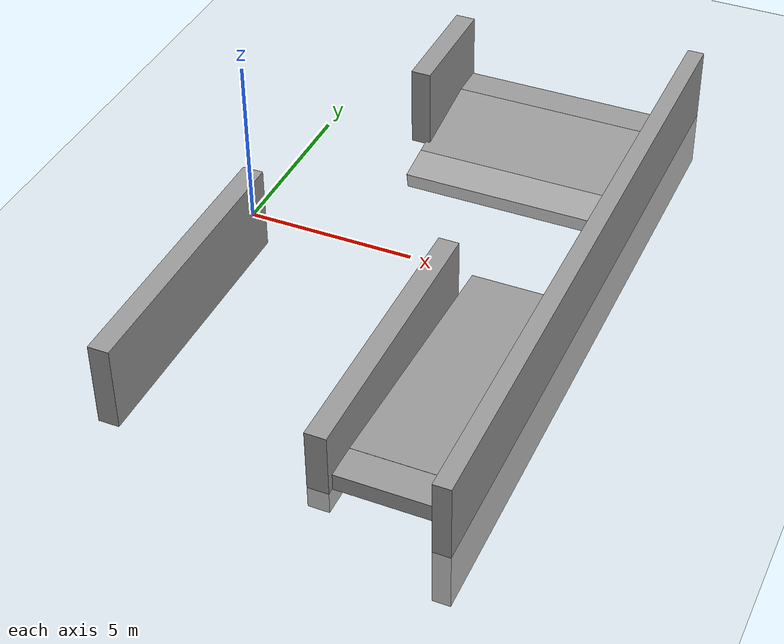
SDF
<sdf version="1.7">
 <world name="default">
  <model name="ground_plane">
   <static>1</static>
   <link name="link">
    <collision name="collision">
     <geometry><plane><normal>0 0 1</normal><size>100 100</size></plane></geometry>
     <surface>
      <contact><collide_bitmask>65535</collide_bitmask></contact>
      <friction><ode><mu>50</mu><mu2>50</mu2></ode></friction>
     </surface>
     <max_contacts>50</max_contacts>
    </collision>
    <visual name="visual">
     <cast_shadows>0</cast_shadows>
     <geometry><plane><normal>0 0 1</normal><size>100 100</size></plane></geometry>
     <material>
      <script><uri>file://media/materials/scripts/gazebo.material</uri><name>Gazebo/Grey</name></script>
     </material>
    </visual>
   </link>
  </model>
  <model name="unit_box_4_0">
   <static>1</static>
   <link name="link">
    <inertial>
     <mass>1</mass>
     <inertia>
      <ixx>0.166667</ixx>
      <ixy>0</ixy>
      <ixz>0</ixz>
      <iyy>0.166667</iyy>
      <iyz>0</iyz>
      <izz>0.166667</izz>
     </inertia>
    </inertial>
    <visual name="visual">
     <geometry><box><size>3 1 0.5</size></box></geometry>
     <material>
      <script><name>Gazebo/Grey</name><uri>file://media/materials/scripts/gazebo.material</uri></script>
      <shader type="pixel"><normal_map>__default__</normal_map></shader>
      <ambient>0.3 0.3 0.3 1</ambient>
      <diffuse>0.7 0.7 0.7 1</diffuse>
      <specular>0.01 0.01 0.01 1</specular>
      <emissive>0 0 0 1</emissive>
     </material>
    </visual>
    <collision name="collision">
     <max_contacts>50</max_contacts>
     <geometry><box><size>3 1 0.5</size></box></geometry>
     <surface>
      <friction>
       <ode><mu>50</mu><mu2>50</mu2><fdir1>0 0 0</fdir1><slip1>0</slip1><slip2>0</slip2></ode>
       <torsional>
        <coefficient>1</coefficient>
        <patch_radius>0</patch_radius>
        <surface_radius>0</surface_radius>
        <use_patch_radius>1</use_patch_radius>
        <ode><slip>0</slip></ode>
       </torsional>
      </friction>
      <bounce><restitution_coefficient>0</restitution_coefficient><threshold>1e+06</threshold></bounce>
      <contact>
       <collide_without_contact>0</collide_without_contact>
       <collide_without_contact_bitmask>1</collide_without_contact_bitmask>
       <collide_bitmask>1</collide_bitmask>
       <ode>
        <soft_cfm>0</soft_cfm>
        <soft_erp>0.2</soft_erp>
        <kp>1e+13</kp>
        <kd>1</kd>
        <max_vel>0.01</max_vel>
        <min_depth>0</min_depth>
       </ode>
       <bullet>
        <split_impulse>1</split_impulse>
        <split_impulse_penetration_threshold>-0.01</split_impulse_penetration_threshold>
        <soft_cfm>0</soft_cfm>
        <soft_erp>0.2</soft_erp>
        <kp>1e+13</kp>
        <kd>1</kd>
       </bullet>
      </contact>
     </surface>
    </collision>
   </link>
   <static>1</static>
   <pose>8.41088 -8.53541 0.25 -1e-05 0 0</pose>
  </model>
  <model name="unit_box_up1">
   <link name="link">
    <inertial>
     <mass>1</mass>
     <inertia>
      <ixx>0.166667</ixx>
      <ixy>0</ixy>
      <ixz>0</ixz>
      <iyy>0.166667</iyy>
      <iyz>0</iyz>
      <izz>0.166667</izz>
     </inertia>
    </inertial>
    <visual name="visual">
     <geometry><box><size>3 8 0.5</size></box></geometry>
     <material>
      <script><name>Gazebo/Grey</name><uri>file://media/materials/scripts/gazebo.material</uri></script>
      <shader type="pixel"><normal_map>__default__</normal_map></shader>
      <ambient>0.3 0.3 0.3 1</ambient>
      <diffuse>0.7 0.7 0.7 1</diffuse>
      <specular>0.01 0.01 0.01 1</specular>
      <emissive>0 0 0 1</emissive>
     </material>
    </visual>
    <collision name="collision">
     <max_contacts>50</max_contacts>
     <geometry><box><size>3 8 0.5</size></box></geometry>
     <surface>
      <friction>
       <ode><mu>50</mu><mu2>50</mu2><fdir1>0 0 0</fdir1><slip1>0</slip1><slip2>0</slip2></ode>
       <torsional>
        <coefficient>1</coefficient>
        <patch_radius>0</patch_radius>
        <surface_radius>0</surface_radius>
        <use_patch_radius>1</use_patch_radius>
        <ode><slip>0</slip></ode>
       </torsional>
      </friction>
      <bounce><restitution_coefficient>0</restitution_coefficient><threshold>1e+06</threshold></bounce>
      <contact>
       <collide_without_contact>0</collide_without_contact>
       <collide_without_contact_bitmask>1</collide_without_contact_bitmask>
       <collide_bitmask>1</collide_bitmask>
       <ode>
        <soft_cfm>0</soft_cfm>
        <soft_erp>0.2</soft_erp>
        <kp>1e+13</kp>
        <kd>1</kd>
        <max_vel>0.01</max_vel>
        <min_depth>0</min_depth>
       </ode>
       <bullet>
        <split_impulse>1</split_impulse>
        <split_impulse_penetration_threshold>-0.01</split_impulse_penetration_threshold>
        <soft_cfm>0</soft_cfm>
        <soft_erp>0.2</soft_erp>
        <kp>1e+13</kp>
        <kd>1</kd>
       </bullet>
      </contact>
     </surface>
    </collision>
   </link>
   <static>1</static>
   <pose>8.41177 -4.06441 0.002881 -0.062458 0 0</pose>
  </model>
  <model name="unit_box_wall_clone">
   <link name="link">
    <inertial>
     <mass>1</mass>
     <inertia>
      <ixx>0.166667</ixx>
      <ixy>0</ixy>
      <ixz>0</ixz>
      <iyy>0.166667</iyy>
      <iyz>0</iyz>
      <izz>0.166667</izz>
     </inertia>
    </inertial>
    <visual name="visual">
     <geometry><box><size>0.5 20 4</size></box></geometry>
     <material>
      <script><name>Gazebo/Grey</name><uri>file://media/materials/scripts/gazebo.material</uri></script>
      <shader type="pixel"><normal_map>__default__</normal_map></shader>
      <ambient>0.3 0.3 0.3 1</ambient>
      <diffuse>0.7 0.7 0.7 1</diffuse>
      <specular>0.01 0.01 0.01 1</specular>
      <emissive>0 0 0 1</emissive>
     </material>
    </visual>
    <collision name="collision">
     <max_contacts>50</max_contacts>
     <geometry><box><size>0.5 20 4</size></box></geometry>
     <surface>
      <friction>
       <ode><mu>50</mu><mu2>50</mu2><fdir1>0 0 0</fdir1><slip1>0</slip1><slip2>0</slip2></ode>
       <torsional>
        <coefficient>1</coefficient>
        <patch_radius>0</patch_radius>
        <surface_radius>0</surface_radius>
        <use_patch_radius>1</use_patch_radius>
        <ode><slip>0</slip></ode>
       </torsional>
      </friction>
      <bounce><restitution_coefficient>0</restitution_coefficient><threshold>1e+06</threshold></bounce>
      <contact>
       <collide_without_contact>0</collide_without_contact>
       <collide_without_contact_bitmask>1</collide_without_contact_bitmask>
       <collide_bitmask>1</collide_bitmask>
       <ode>
        <soft_cfm>0</soft_cfm>
        <soft_erp>0.2</soft_erp>
        <kp>1e+13</kp>
        <kd>1</kd>
        <max_vel>0.01</max_vel>
        <min_depth>0</min_depth>
       </ode>
       <bullet>
        <split_impulse>1</split_impulse>
        <split_impulse_penetration_threshold>-0.01</split_impulse_penetration_threshold>
        <soft_cfm>0</soft_cfm>
        <soft_erp>0.2</soft_erp>
        <kp>1e+13</kp>
        <kd>1</kd>
       </bullet>
      </contact>
     </surface>
    </collision>
   </link>
   <static>1</static>
   <pose>10.1456 0.068655 0.24996 1e-05 -0 -3.13792</pose>
  </model>
  <model name="unit_box_0">
   <link name="link">
    <inertial>
     <mass>1</mass>
     <inertia>
      <ixx>0.166667</ixx>
      <ixy>0</ixy>
      <ixz>0</ixz>
      <iyy>0.166667</iyy>
      <iyz>0</iyz>
      <izz>0.166667</izz>
     </inertia>
    </inertial>
    <visual name="visual">
     <geometry><box><size>7 1 0.5</size></box></geometry>
     <material>
      <script><name>Gazebo/Grey</name><uri>file://media/materials/scripts/gazebo.material</uri></script>
      <shader type="pixel"><normal_map>__default__</normal_map></shader>
      <ambient>0.3 0.3 0.3 1</ambient>
      <diffuse>0.7 0.7 0.7 1</diffuse>
      <specular>0.01 0.01 0.01 1</specular>
      <emissive>0 0 0 1</emissive>
     </material>
    </visual>
    <collision name="collision">
     <max_contacts>50</max_contacts>
     <geometry><box><size>7 1 0.5</size></box></geometry>
     <surface>
      <friction>
       <ode><mu>50</mu><mu2>50</mu2><fdir1>0 0 0</fdir1><slip1>0</slip1><slip2>0</slip2></ode>
       <torsional>
        <coefficient>1</coefficient>
        <patch_radius>0</patch_radius>
        <surface_radius>0</surface_radius>
        <use_patch_radius>1</use_patch_radius>
        <ode><slip>0</slip></ode>
       </torsional>
      </friction>
      <bounce><restitution_coefficient>0</restitution_coefficient><threshold>1e+06</threshold></bounce>
      <contact>
       <collide_without_contact>0</collide_without_contact>
       <collide_without_contact_bitmask>1</collide_without_contact_bitmask>
       <collide_bitmask>1</collide_bitmask>
       <ode>
        <soft_cfm>0</soft_cfm>
        <soft_erp>0.2</soft_erp>
        <kp>1e+13</kp>
        <kd>1</kd>
        <max_vel>0.01</max_vel>
        <min_depth>0</min_depth>
       </ode>
       <bullet>
        <split_impulse>1</split_impulse>
        <split_impulse_penetration_threshold>-0.01</split_impulse_penetration_threshold>
        <soft_cfm>0</soft_cfm>
        <soft_erp>0.2</soft_erp>
        <kp>1e+13</kp>
        <kd>1</kd>
       </bullet>
      </contact>
     </surface>
    </collision>
   </link>
   <static>1</static>
   <pose>6.68114 8.28483 0.252469 -1e-05 0 0</pose>
  </model>
  <model name="unit_box_slop2">
   <link name="link">
    <inertial>
     <mass>1</mass>
     <inertia>
      <ixx>0.166667</ixx>
      <ixy>0</ixy>
      <ixz>0</ixz>
      <iyy>0.166667</iyy>
      <iyz>0</iyz>
      <izz>0.166667</izz>
     </inertia>
    </inertial>
    <visual name="visual">
     <geometry><box><size>6.75 4 0.5</size></box></geometry>
     <material>
      <script><name>Gazebo/Grey</name><uri>file://media/materials/scripts/gazebo.material</uri></script>
      <shader type="pixel"><normal_map>__default__</normal_map></shader>
      <ambient>0.3 0.3 0.3 1</ambient>
      <diffuse>0.7 0.7 0.7 1</diffuse>
      <specular>0.01 0.01 0.01 1</specular>
      <emissive>0 0 0 1</emissive>
     </material>
    </visual>
    <collision name="collision">
     <max_contacts>50</max_contacts>
     <geometry><box><size>6.75 4 0.5</size></box></geometry>
     <surface>
      <friction>
       <ode><mu>50</mu><mu2>50</mu2><fdir1>0 0 0</fdir1><slip1>0</slip1><slip2>0</slip2></ode>
       <torsional>
        <coefficient>1</coefficient>
        <patch_radius>0</patch_radius>
        <surface_radius>0</surface_radius>
        <use_patch_radius>1</use_patch_radius>
        <ode><slip>0</slip></ode>
       </torsional>
      </friction>
      <bounce><restitution_coefficient>0</restitution_coefficient><threshold>1e+06</threshold></bounce>
      <contact>
       <collide_without_contact>0</collide_without_contact>
       <collide_without_contact_bitmask>1</collide_without_contact_bitmask>
       <collide_bitmask>1</collide_bitmask>
       <ode>
        <soft_cfm>0</soft_cfm>
        <soft_erp>0.2</soft_erp>
        <kp>1e+13</kp>
        <kd>1</kd>
        <max_vel>0.01</max_vel>
        <min_depth>0</min_depth>
       </ode>
       <bullet>
        <split_impulse>1</split_impulse>
        <split_impulse_penetration_threshold>-0.01</split_impulse_penetration_threshold>
        <soft_cfm>0</soft_cfm>
        <soft_erp>0.2</soft_erp>
        <kp>1e+13</kp>
        <kd>1</kd>
       </bullet>
      </contact>
     </surface>
    </collision>
   </link>
   <static>1</static>
   <pose>6.543 5.86448 -0.105027 0.182584 -0 0</pose>
  </model>
  <model name="unit_box_8">
   <link name="link">
    <inertial>
     <mass>1</mass>
     <inertia>
      <ixx>0.166667</ixx>
      <ixy>0</ixy>
      <ixz>0</ixz>
      <iyy>0.166667</iyy>
      <iyz>0</iyz>
      <izz>0.166667</izz>
     </inertia>
    </inertial>
    <visual name="visual">
     <geometry><box><size>0.6 8.2 2.5</size></box></geometry>
     <material>
      <script><name>Gazebo/Grey</name><uri>file://media/materials/scripts/gazebo.material</uri></script>
      <shader type="pixel"><normal_map>__default__</normal_map></shader>
      <ambient>0.3 0.3 0.3 1</ambient>
      <diffuse>0.7 0.7 0.7 1</diffuse>
      <specular>0.01 0.01 0.01 1</specular>
      <emissive>0 0 0 1</emissive>
     </material>
    </visual>
    <collision name="collision">
     <max_contacts>50</max_contacts>
     <geometry><box><size>0.6 8.2 2.5</size></box></geometry>
     <surface>
      <friction>
       <ode><mu>50</mu><mu2>50</mu2><fdir1>0 0 0</fdir1><slip1>0</slip1><slip2>0</slip2></ode>
       <torsional>
        <coefficient>1</coefficient>
        <patch_radius>0</patch_radius>
        <surface_radius>0</surface_radius>
        <use_patch_radius>1</use_patch_radius>
        <ode><slip>0</slip></ode>
       </torsional>
      </friction>
      <bounce><restitution_coefficient>0</restitution_coefficient><threshold>1e+06</threshold></bounce>
      <contact>
       <collide_without_contact>0</collide_without_contact>
       <collide_without_contact_bitmask>1</collide_without_contact_bitmask>
       <collide_bitmask>1</collide_bitmask>
       <ode>
        <soft_cfm>0</soft_cfm>
        <soft_erp>0.2</soft_erp>
        <kp>1e+13</kp>
        <kd>1</kd>
        <max_vel>0.01</max_vel>
        <min_depth>0</min_depth>
       </ode>
       <bullet>
        <split_impulse>1</split_impulse>
        <split_impulse_penetration_threshold>-0.01</split_impulse_penetration_threshold>
        <soft_cfm>0</soft_cfm>
        <soft_erp>0.2</soft_erp>
        <kp>1e+13</kp>
        <kd>1</kd>
       </bullet>
      </contact>
     </surface>
    </collision>
   </link>
   <static>1</static>
   <pose>6.59307 -5.11125 0.580735 0 -0 0</pose>
  </model>
  <model name="unit_box_3_clone_clone_clone">
   <link name="link">
    <inertial>
     <mass>1</mass>
     <inertia>
      <ixx>0.166667</ixx>
      <ixy>0</ixy>
      <ixz>0</ixz>
      <iyy>0.166667</iyy>
      <iyz>0</iyz>
      <izz>0.166667</izz>
     </inertia>
    </inertial>
    <visual name="visual">
     <geometry><box><size>0.6 3.5 2.5</size></box></geometry>
     <material>
      <script><name>Gazebo/Grey</name><uri>file://media/materials/scripts/gazebo.material</uri></script>
      <shader type="pixel"><normal_map>__default__</normal_map></shader>
      <ambient>0.3 0.3 0.3 1</ambient>
      <diffuse>0.7 0.7 0.7 1</diffuse>
      <specular>0.01 0.01 0.01 1</specular>
      <emissive>0 0 0 1</emissive>
     </material>
    </visual>
    <collision name="collision">
     <max_contacts>50</max_contacts>
     <geometry><box><size>0.6 3.5 2.5</size></box></geometry>
     <surface>
      <friction>
       <ode><mu>50</mu><mu2>50</mu2><fdir1>0 0 0</fdir1><slip1>0</slip1><slip2>0</slip2></ode>
       <torsional>
        <coefficient>1</coefficient>
        <patch_radius>0</patch_radius>
        <surface_radius>0</surface_radius>
        <use_patch_radius>1</use_patch_radius>
        <ode><slip>0</slip></ode>
       </torsional>
      </friction>
      <bounce><restitution_coefficient>0</restitution_coefficient><threshold>1e+06</threshold></bounce>
      <contact>
       <collide_without_contact>0</collide_without_contact>
       <collide_without_contact_bitmask>1</collide_without_contact_bitmask>
       <collide_bitmask>1</collide_bitmask>
       <ode>
        <soft_cfm>0</soft_cfm>
        <soft_erp>0.2</soft_erp>
        <kp>1e+13</kp>
        <kd>1</kd>
        <max_vel>0.01</max_vel>
        <min_depth>0</min_depth>
       </ode>
       <bullet>
        <split_impulse>1</split_impulse>
        <split_impulse_penetration_threshold>-0.01</split_impulse_penetration_threshold>
        <soft_cfm>0</soft_cfm>
        <soft_erp>0.2</soft_erp>
        <kp>1e+13</kp>
        <kd>1</kd>
       </bullet>
      </contact>
     </surface>
    </collision>
   </link>
   <static>1</static>
   <pose>3.00689 7.06306 1.22408 0 -0 0</pose>
  </model>
  <model name="unit_box_8_clone">
   <link name="link">
    <inertial>
     <mass>1</mass>
     <inertia>
      <ixx>0.166667</ixx>
      <ixy>0</ixy>
      <ixz>0</ixz>
      <iyy>0.166667</iyy>
      <iyz>0</iyz>
      <izz>0.166667</izz>
     </inertia>
    </inertial>
    <visual name="visual">
     <geometry><box><size>0.6 8.2 2.5</size></box></geometry>
     <material>
      <script><name>Gazebo/Grey</name><uri>file://media/materials/scripts/gazebo.material</uri></script>
      <shader type="pixel"><normal_map>__default__</normal_map></shader>
      <ambient>0.3 0.3 0.3 1</ambient>
      <diffuse>0.7 0.7 0.7 1</diffuse>
      <specular>0.01 0.01 0.01 1</specular>
      <emissive>0 0 0 1</emissive>
     </material>
    </visual>
    <collision name="collision">
     <max_contacts>50</max_contacts>
     <geometry><box><size>0.6 8.2 2.5</size></box></geometry>
     <surface>
      <friction>
       <ode><mu>50</mu><mu2>50</mu2><fdir1>0 0 0</fdir1><slip1>0</slip1><slip2>0</slip2></ode>
       <torsional>
        <coefficient>1</coefficient>
        <patch_radius>0</patch_radius>
        <surface_radius>0</surface_radius>
        <use_patch_radius>1</use_patch_radius>
        <ode><slip>0</slip></ode>
       </torsional>
      </friction>
      <bounce><restitution_coefficient>0</restitution_coefficient><threshold>1e+06</threshold></bounce>
      <contact>
       <collide_without_contact>0</collide_without_contact>
       <collide_without_contact_bitmask>1</collide_without_contact_bitmask>
       <collide_bitmask>1</collide_bitmask>
       <ode>
        <soft_cfm>0</soft_cfm>
        <soft_erp>0.2</soft_erp>
        <kp>1e+13</kp>
        <kd>1</kd>
        <max_vel>0.01</max_vel>
        <min_depth>0</min_depth>
       </ode>
       <bullet>
        <split_impulse>1</split_impulse>
        <split_impulse_penetration_threshold>-0.01</split_impulse_penetration_threshold>
        <soft_cfm>0</soft_cfm>
        <soft_erp>0.2</soft_erp>
        <kp>1e+13</kp>
        <kd>1</kd>
       </bullet>
      </contact>
     </surface>
    </collision>
   </link>
   <static>1</static>
   <pose>0.686916 -5.10856 1.24018 0 -0 0</pose>
  </model>
 </world>
</sdf>
